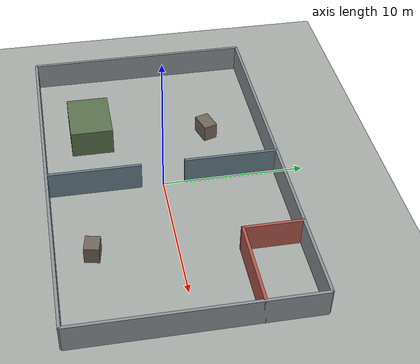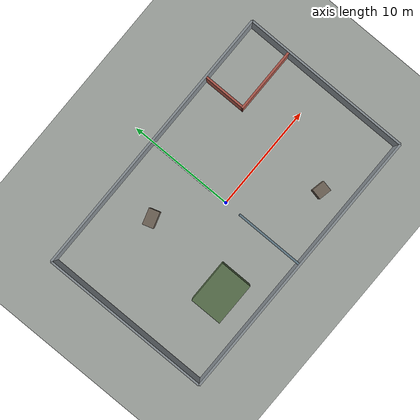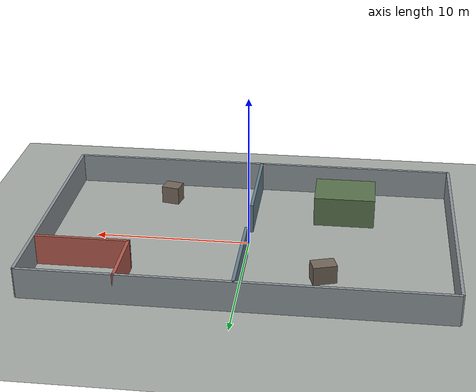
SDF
<?xml version="1.0" ?>
<sdf version="1.9">

  <world name="nav_test_world">

    <physics name="1ms" type="ignored">
      <max_step_size>0.001</max_step_size>
      <real_time_factor>1.0</real_time_factor>
      <real_time_update_rate>1000</real_time_update_rate>
    </physics>

    <plugin name="ignition::gazebo::systems::Physics"        filename="ignition-gazebo-physics-system"/>
    <plugin name="ignition::gazebo::systems::SceneBroadcaster" filename="ignition-gazebo-scene-broadcaster-system"/>
    <plugin name="ignition::gazebo::systems::UserCommands"   filename="ignition-gazebo-user-commands-system"/>
    <plugin name="ignition::gazebo::systems::Sensors"        filename="ignition-gazebo-sensors-system">
      <render_engine>ogre2</render_engine>
    </plugin>

    <gravity>0 0 -9.81</gravity>

    <scene>
      <ambient>0.45 0.45 0.45 1</ambient>
      <background>0.72 0.76 0.80 1</background>
      <shadows>true</shadows>
    </scene>

    <light name="sun" type="directional">
      <pose>0 0 10 0 0 0</pose>
      <cast_shadows>true</cast_shadows>
      <intensity>1.0</intensity>
      <direction>-0.4 0.2 -0.9</direction>
    </light>

    <!-- ==================== SUELO ==================== -->
    <model name="ground_plane">
      <static>true</static>
      <link name="link">
        <collision name="collision">
          <geometry><plane><normal>0 0 1</normal><size>36 24</size></plane></geometry>
        </collision>
        <visual name="visual">
          <geometry><plane><normal>0 0 1</normal><size>36 24</size></plane></geometry>
          <material><ambient>0.65 0.67 0.65 1</ambient><diffuse>0.65 0.67 0.65 1</diffuse></material>
        </visual>
      </link>
    </model>

    <!-- ==================== PAREDES EXTERNAS ==================== -->
    <model name="north_wall">
      <static>true</static>
      <pose>0 8.0 1 0 0 0</pose>
      <link name="link">
        <collision name="collision"><geometry><box><size>26 0.2 2</size></box></geometry></collision>
        <visual name="visual"><geometry><box><size>26 0.2 2</size></box></geometry>
          <material><ambient>0.55 0.58 0.60 1</ambient><diffuse>0.55 0.58 0.60 1</diffuse></material>
        </visual>
      </link>
    </model>

    <model name="south_wall">
      <static>true</static>
      <pose>0 -8.0 1 0 0 0</pose>
      <link name="link">
        <collision name="collision"><geometry><box><size>26 0.2 2</size></box></geometry></collision>
        <visual name="visual"><geometry><box><size>26 0.2 2</size></box></geometry>
          <material><ambient>0.55 0.58 0.60 1</ambient><diffuse>0.55 0.58 0.60 1</diffuse></material>
        </visual>
      </link>
    </model>

    <model name="west_wall">
      <static>true</static>
      <pose>-13 0 1 0 0 0</pose>
      <link name="link">
        <collision name="collision"><geometry><box><size>0.2 16 2</size></box></geometry></collision>
        <visual name="visual"><geometry><box><size>0.2 16 2</size></box></geometry>
          <material><ambient>0.55 0.58 0.60 1</ambient><diffuse>0.55 0.58 0.60 1</diffuse></material>
        </visual>
      </link>
    </model>

    <model name="east_wall">
      <static>true</static>
      <pose>13 0 1 0 0 0</pose>
      <link name="link">
        <collision name="collision"><geometry><box><size>0.2 16 2</size></box></geometry></collision>
        <visual name="visual"><geometry><box><size>0.2 16 2</size></box></geometry>
          <material><ambient>0.55 0.58 0.60 1</ambient><diffuse>0.55 0.58 0.60 1</diffuse></material>
        </visual>
      </link>
    </model>

    <!-- ==================== PARED DIVISORIA (x=0, hueco en y=[-1.5, 1.5]) ==================== -->
    <!-- Segmento norte: cubre y=[1.5, 8.0], longitud=6.5m, centrada en y=4.75 -->
    <model name="div_wall_north">
      <static>true</static>
      <pose>0 4.75 1 0 0 0</pose>
      <link name="link">
        <collision name="collision"><geometry><box><size>0.2 6.5 2</size></box></geometry></collision>
        <visual name="visual"><geometry><box><size>0.2 6.5 2</size></box></geometry>
          <material><ambient>0.40 0.50 0.55 1</ambient><diffuse>0.40 0.50 0.55 1</diffuse></material>
        </visual>
      </link>
    </model>

    <!-- Segmento sur: cubre y=[-8.0, -1.5], longitud=6.5m, centrada en y=-4.75 -->
    <model name="div_wall_south">
      <static>true</static>
      <pose>0 -4.75 1 0 0 0</pose>
      <link name="link">
        <collision name="collision"><geometry><box><size>0.2 6.5 2</size></box></geometry></collision>
        <visual name="visual"><geometry><box><size>0.2 6.5 2</size></box></geometry>
          <material><ambient>0.40 0.50 0.55 1</ambient><diffuse>0.40 0.50 0.55 1</diffuse></material>
        </visual>
      </link>
    </model>

    <!-- ==================== SALA CERRADA (NE) — CASO 2: INACCESIBLE ==================== -->
    <!-- Sala en x=[7,13], y=[4,8]. Norte y este son las paredes externas ya definidas. -->
    <!-- Pared sur de la sala: y=4, desde x=7 hasta x=13 (long=6m, centrada en x=10) -->
    <model name="enc_south_wall">
      <static>true</static>
      <pose>10 4 1 0 0 0</pose>
      <link name="link">
        <collision name="collision"><geometry><box><size>6.2 0.2 2</size></box></geometry></collision>
        <visual name="visual"><geometry><box><size>6.2 0.2 2</size></box></geometry>
          <material><ambient>0.70 0.35 0.30 1</ambient><diffuse>0.70 0.35 0.30 1</diffuse></material>
        </visual>
      </link>
    </model>

    <!-- Pared oeste de la sala: x=7, desde y=4 hasta y=8 (long=4m, centrada en y=6) -->
    <model name="enc_west_wall">
      <static>true</static>
      <pose>7 6 1 0 0 0</pose>
      <link name="link">
        <collision name="collision"><geometry><box><size>0.2 4.2 2</size></box></geometry></collision>
        <visual name="visual"><geometry><box><size>0.2 4.2 2</size></box></geometry>
          <material><ambient>0.70 0.35 0.30 1</ambient><diffuse>0.70 0.35 0.30 1</diffuse></material>
        </visual>
      </link>
    </model>

    <!-- ==================== BLOQUE SÓLIDO — CASO 3: POSICIÓN OCUPADA ==================== -->
    <!-- Bloque grande en zona SW: centro x=-6, y=-4.5, tamaño 4x3x2m -->
    <model name="solid_block">
      <static>true</static>
      <pose>-6 -4.5 1 0 0 0</pose>
      <link name="link">
        <collision name="collision"><geometry><box><size>4 3 2</size></box></geometry></collision>
        <visual name="visual"><geometry><box><size>4 3 2</size></box></geometry>
          <material><ambient>0.35 0.45 0.30 1</ambient><diffuse>0.35 0.45 0.30 1</diffuse></material>
        </visual>
      </link>
    </model>

    <!-- ==================== OBSTÁCULOS ADICIONALES (hacen el mapa más realista) ==================== -->
    <!-- Caja oeste, zona norte -->
    <model name="box_nw">
      <static>true</static>
      <pose>-5 4 0.6 0 0 0.3</pose>
      <link name="link">
        <collision name="collision"><geometry><box><size>1.5 1.0 1.2</size></box></geometry></collision>
        <visual name="visual"><geometry><box><size>1.5 1.0 1.2</size></box></geometry>
          <material><ambient>0.45 0.40 0.35 1</ambient><diffuse>0.45 0.40 0.35 1</diffuse></material>
        </visual>
      </link>
    </model>

    <!-- Caja este, zona sur (cerca del objetivo libre) -->
    <model name="box_se">
      <static>true</static>
      <pose>6 -5.5 0.6 0 0 -0.2</pose>
      <link name="link">
        <collision name="collision"><geometry><box><size>1.2 1.0 1.2</size></box></geometry></collision>
        <visual name="visual"><geometry><box><size>1.2 1.0 1.2</size></box></geometry>
          <material><ambient>0.45 0.40 0.35 1</ambient><diffuse>0.45 0.40 0.35 1</diffuse></material>
        </visual>
      </link>
    </model>

  </world>
</sdf>
